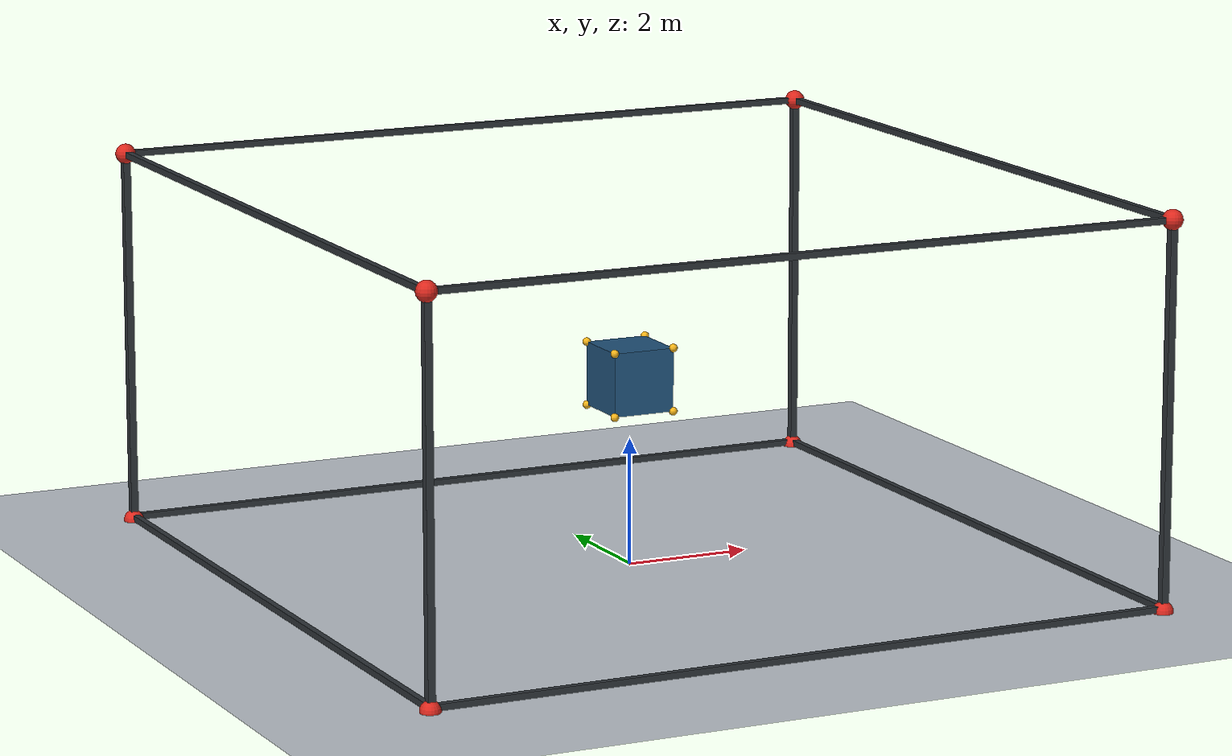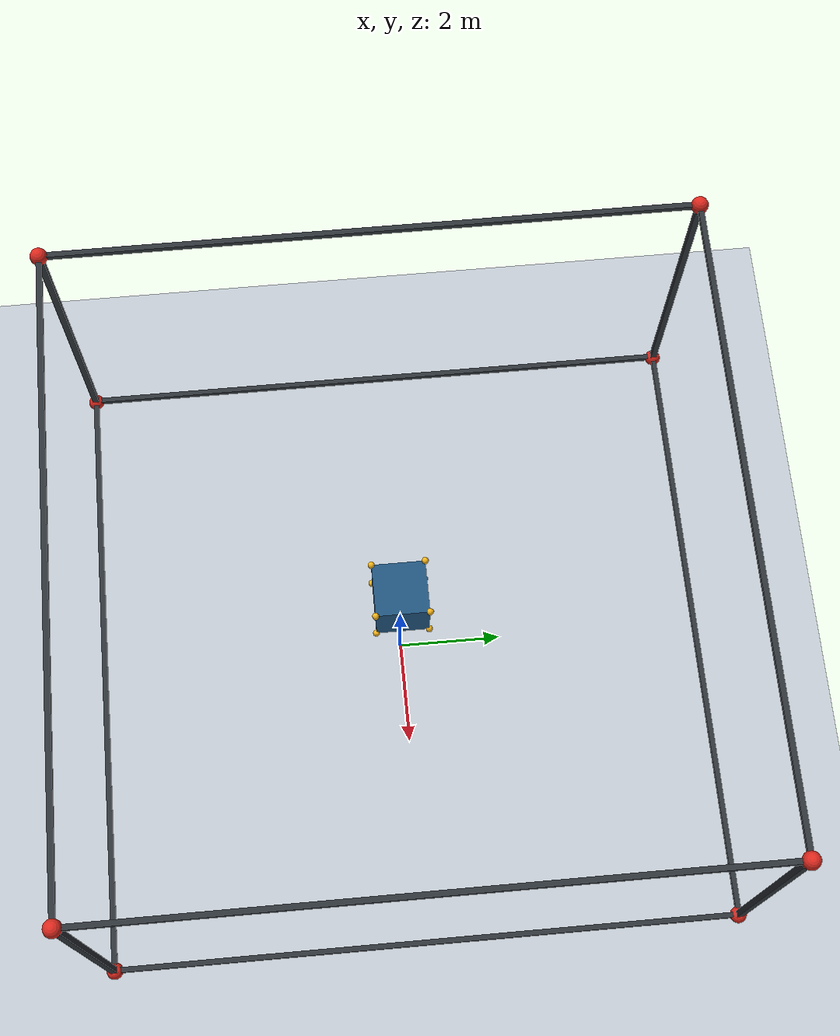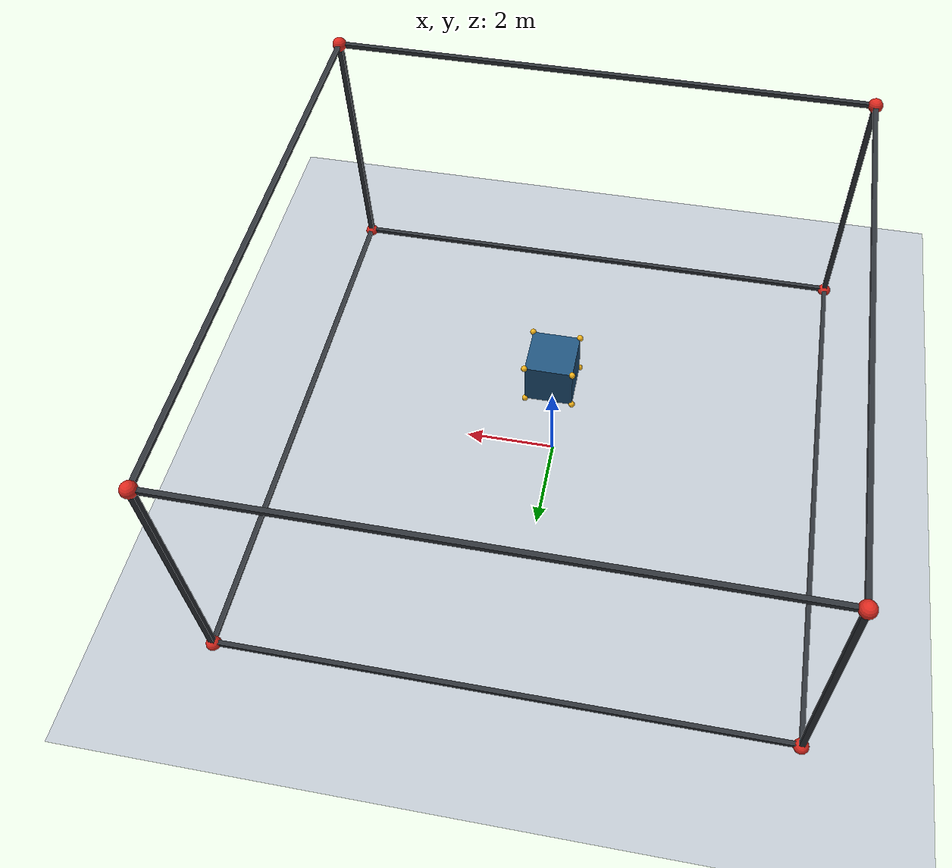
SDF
<?xml version="1.0" ?>
<sdf version="1.6">
  <world name="cdpr_world">
    <gravity>0 0 -9.80665</gravity>
    <physics name="ode_physics" type="ode">
      <max_step_size>0.001</max_step_size>
      <real_time_update_rate>1000</real_time_update_rate>
      <real_time_factor>1.0</real_time_factor>
      <ode>
        <solver>
          <type>quick</type>
          <iters>80</iters>
          <sor>1.2</sor>
        </solver>
        <constraints>
          <cfm>0.0</cfm>
          <erp>0.2</erp>
        </constraints>
      </ode>
    </physics>

    <scene>
      <ambient>0.55 0.58 0.62 1</ambient>
      <background>0.86 0.90 0.95 1</background>
      <shadows>true</shadows>
    </scene>

    <light type="directional" name="sun">
      <cast_shadows>true</cast_shadows>
      <pose>0 0 10 0 0 0</pose>
      <diffuse>0.9 0.9 0.85 1</diffuse>
      <specular>0.2 0.2 0.2 1</specular>
      <attenuation>
        <range>1000</range>
        <constant>0.9</constant>
        <linear>0.01</linear>
        <quadratic>0.001</quadratic>
      </attenuation>
      <direction>-0.4 0.25 -0.88</direction>
    </light>

    <model name="ground_plane">
      <static>true</static>
      <link name="link">
        <collision name="collision">
          <geometry>
            <plane>
              <normal>0 0 1</normal>
              <size>24 24</size>
            </plane>
          </geometry>
        </collision>
        <visual name="visual">
          <geometry>
            <plane>
              <normal>0 0 1</normal>
              <size>24 24</size>
            </plane>
          </geometry>
          <material>
            <ambient>0.74 0.77 0.80 1</ambient>
            <diffuse>0.74 0.77 0.80 1</diffuse>
          </material>
        </visual>
      </link>
    </model>

    <include>
      <uri>model://cdpr_frame</uri>
      <pose>0 0 0 0 0 0</pose>
    </include>

    <include>
      <uri>model://cdpr_platform</uri>
      <pose>0 0 3 0 0 0</pose>
    </include>
  </world>
</sdf>

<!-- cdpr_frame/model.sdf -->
<sdf version="1.6">
  <model name="cdpr_frame">
    <static>true</static>
    <link name="frame">
      <!-- Bottom square -->
      <visual name="beam_bottom_x_neg"><pose>0 -6 0.05 0 0 0</pose><geometry><box><size>12.0 0.10 0.10</size></box></geometry><material><ambient>0.18 0.20 0.22 1</ambient><diffuse>0.18 0.20 0.22 1</diffuse></material></visual>
      <visual name="beam_bottom_x_pos"><pose>0  6 0.05 0 0 0</pose><geometry><box><size>12.0 0.10 0.10</size></box></geometry><material><ambient>0.18 0.20 0.22 1</ambient><diffuse>0.18 0.20 0.22 1</diffuse></material></visual>
      <visual name="beam_bottom_y_neg"><pose>-6 0 0.05 0 0 0</pose><geometry><box><size>0.10 12.0 0.10</size></box></geometry><material><ambient>0.18 0.20 0.22 1</ambient><diffuse>0.18 0.20 0.22 1</diffuse></material></visual>
      <visual name="beam_bottom_y_pos"><pose> 6 0 0.05 0 0 0</pose><geometry><box><size>0.10 12.0 0.10</size></box></geometry><material><ambient>0.18 0.20 0.22 1</ambient><diffuse>0.18 0.20 0.22 1</diffuse></material></visual>

      <!-- Top square -->
      <visual name="beam_top_x_neg"><pose>0 -6 6.0 0 0 0</pose><geometry><box><size>12.0 0.10 0.10</size></box></geometry><material><ambient>0.18 0.20 0.22 1</ambient><diffuse>0.18 0.20 0.22 1</diffuse></material></visual>
      <visual name="beam_top_x_pos"><pose>0  6 6.0 0 0 0</pose><geometry><box><size>12.0 0.10 0.10</size></box></geometry><material><ambient>0.18 0.20 0.22 1</ambient><diffuse>0.18 0.20 0.22 1</diffuse></material></visual>
      <visual name="beam_top_y_neg"><pose>-6 0 6.0 0 0 0</pose><geometry><box><size>0.10 12.0 0.10</size></box></geometry><material><ambient>0.18 0.20 0.22 1</ambient><diffuse>0.18 0.20 0.22 1</diffuse></material></visual>
      <visual name="beam_top_y_pos"><pose> 6 0 6.0 0 0 0</pose><geometry><box><size>0.10 12.0 0.10</size></box></geometry><material><ambient>0.18 0.20 0.22 1</ambient><diffuse>0.18 0.20 0.22 1</diffuse></material></visual>

      <!-- Columns -->
      <visual name="column_0"><pose>-6 -6 3 0 0 0</pose><geometry><box><size>0.12 0.12 6.0</size></box></geometry><material><ambient>0.18 0.20 0.22 1</ambient><diffuse>0.18 0.20 0.22 1</diffuse></material></visual>
      <visual name="column_1"><pose> 6 -6 3 0 0 0</pose><geometry><box><size>0.12 0.12 6.0</size></box></geometry><material><ambient>0.18 0.20 0.22 1</ambient><diffuse>0.18 0.20 0.22 1</diffuse></material></visual>
      <visual name="column_2"><pose> 6  6 3 0 0 0</pose><geometry><box><size>0.12 0.12 6.0</size></box></geometry><material><ambient>0.18 0.20 0.22 1</ambient><diffuse>0.18 0.20 0.22 1</diffuse></material></visual>
      <visual name="column_3"><pose>-6  6 3 0 0 0</pose><geometry><box><size>0.12 0.12 6.0</size></box></geometry><material><ambient>0.18 0.20 0.22 1</ambient><diffuse>0.18 0.20 0.22 1</diffuse></material></visual>

      <!-- Anchor markers -->
      <visual name="anchor_0"><pose>-6 -6 6 0 0 0</pose><geometry><sphere><radius>0.16</radius></sphere></geometry><material><ambient>0.86 0.16 0.12 1</ambient><diffuse>0.86 0.16 0.12 1</diffuse></material></visual>
      <visual name="anchor_1"><pose> 6 -6 6 0 0 0</pose><geometry><sphere><radius>0.16</radius></sphere></geometry><material><ambient>0.86 0.16 0.12 1</ambient><diffuse>0.86 0.16 0.12 1</diffuse></material></visual>
      <visual name="anchor_2"><pose> 6  6 6 0 0 0</pose><geometry><sphere><radius>0.16</radius></sphere></geometry><material><ambient>0.86 0.16 0.12 1</ambient><diffuse>0.86 0.16 0.12 1</diffuse></material></visual>
      <visual name="anchor_3"><pose>-6  6 6 0 0 0</pose><geometry><sphere><radius>0.16</radius></sphere></geometry><material><ambient>0.86 0.16 0.12 1</ambient><diffuse>0.86 0.16 0.12 1</diffuse></material></visual>
      <visual name="anchor_4"><pose>-6 -6 0 0 0 0</pose><geometry><sphere><radius>0.16</radius></sphere></geometry><material><ambient>0.86 0.16 0.12 1</ambient><diffuse>0.86 0.16 0.12 1</diffuse></material></visual>
      <visual name="anchor_5"><pose> 6 -6 0 0 0 0</pose><geometry><sphere><radius>0.16</radius></sphere></geometry><material><ambient>0.86 0.16 0.12 1</ambient><diffuse>0.86 0.16 0.12 1</diffuse></material></visual>
      <visual name="anchor_6"><pose> 6  6 0 0 0 0</pose><geometry><sphere><radius>0.16</radius></sphere></geometry><material><ambient>0.86 0.16 0.12 1</ambient><diffuse>0.86 0.16 0.12 1</diffuse></material></visual>
      <visual name="anchor_7"><pose>-6  6 0 0 0 0</pose><geometry><sphere><radius>0.16</radius></sphere></geometry><material><ambient>0.86 0.16 0.12 1</ambient><diffuse>0.86 0.16 0.12 1</diffuse></material></visual>
    </link>
  </model>
</sdf>

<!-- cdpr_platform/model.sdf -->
<sdf version="1.6">
  <model name="cdpr_platform">
    <static>false</static>
    <allow_auto_disable>false</allow_auto_disable>
    <link name="platform_link">
      <inertial>
        <mass>50.0</mass>
        <inertia>
          <ixx>8.333333333</ixx>
          <iyy>8.333333333</iyy>
          <izz>8.333333333</izz>
          <ixy>0</ixy>
          <ixz>0</ixz>
          <iyz>0</iyz>
        </inertia>
      </inertial>
      <collision name="platform_collision">
        <geometry>
          <box>
            <size>1 1 1</size>
          </box>
        </geometry>
        <surface>
          <friction>
            <ode>
              <mu>0.1</mu>
              <mu2>0.1</mu2>
            </ode>
          </friction>
        </surface>
      </collision>
      <visual name="platform_visual">
        <geometry>
          <box>
            <size>1 1 1</size>
          </box>
        </geometry>
        <material>
          <ambient>0.12 0.22 0.32 1</ambient>
          <diffuse>0.12 0.32 0.48 1</diffuse>
          <specular>0.25 0.25 0.25 1</specular>
        </material>
      </visual>

      <visual name="attachment_0"><pose>-0.5 -0.5  0.5 0 0 0</pose><geometry><sphere><radius>0.065</radius></sphere></geometry><material><ambient>0.95 0.70 0.10 1</ambient><diffuse>0.95 0.70 0.10 1</diffuse></material></visual>
      <visual name="attachment_1"><pose> 0.5 -0.5  0.5 0 0 0</pose><geometry><sphere><radius>0.065</radius></sphere></geometry><material><ambient>0.95 0.70 0.10 1</ambient><diffuse>0.95 0.70 0.10 1</diffuse></material></visual>
      <visual name="attachment_2"><pose> 0.5  0.5  0.5 0 0 0</pose><geometry><sphere><radius>0.065</radius></sphere></geometry><material><ambient>0.95 0.70 0.10 1</ambient><diffuse>0.95 0.70 0.10 1</diffuse></material></visual>
      <visual name="attachment_3"><pose>-0.5  0.5  0.5 0 0 0</pose><geometry><sphere><radius>0.065</radius></sphere></geometry><material><ambient>0.95 0.70 0.10 1</ambient><diffuse>0.95 0.70 0.10 1</diffuse></material></visual>
      <visual name="attachment_4"><pose>-0.5 -0.5 -0.5 0 0 0</pose><geometry><sphere><radius>0.065</radius></sphere></geometry><material><ambient>0.95 0.70 0.10 1</ambient><diffuse>0.95 0.70 0.10 1</diffuse></material></visual>
      <visual name="attachment_5"><pose> 0.5 -0.5 -0.5 0 0 0</pose><geometry><sphere><radius>0.065</radius></sphere></geometry><material><ambient>0.95 0.70 0.10 1</ambient><diffuse>0.95 0.70 0.10 1</diffuse></material></visual>
      <visual name="attachment_6"><pose> 0.5  0.5 -0.5 0 0 0</pose><geometry><sphere><radius>0.065</radius></sphere></geometry><material><ambient>0.95 0.70 0.10 1</ambient><diffuse>0.95 0.70 0.10 1</diffuse></material></visual>
      <visual name="attachment_7"><pose>-0.5  0.5 -0.5 0 0 0</pose><geometry><sphere><radius>0.065</radius></sphere></geometry><material><ambient>0.95 0.70 0.10 1</ambient><diffuse>0.95 0.70 0.10 1</diffuse></material></visual>
    </link>

    <plugin name="cdpr_force_plugin" filename="libcdpr_force_plugin.so">
      <linkName>platform_link</linkName>
    </plugin>
  </model>
</sdf>
